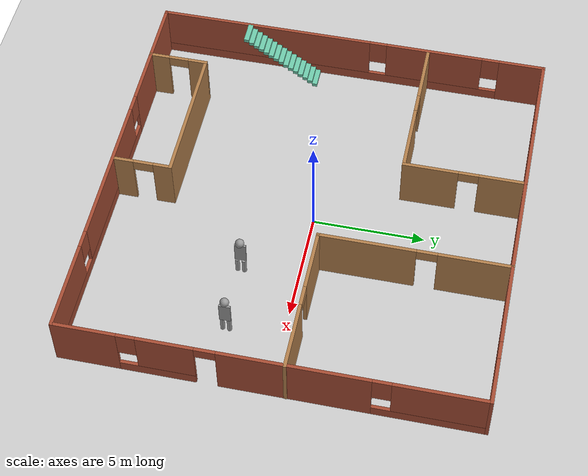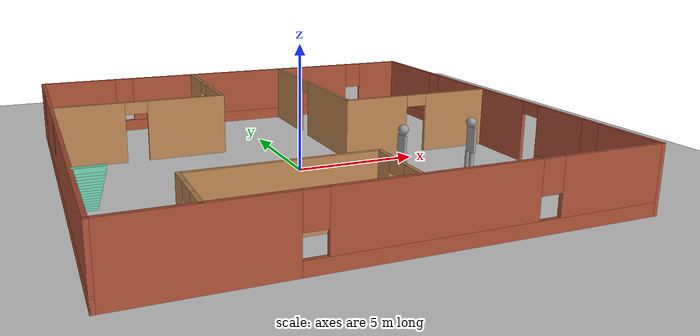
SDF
<sdf version="1.6">
 <world name="default">
  <light name="sun" type="directional">
   <pose>0 0 10 0 -0 0</pose>
   <diffuse>0.8 0.8 0.8 1</diffuse>
   <specular>0.2 0.2 0.2 1</specular>
   <attenuation>
    <range>1000</range>
    <constant>0.9</constant>
    <linear>0.01</linear>
    <quadratic>0.001</quadratic>
   </attenuation>
   <direction>-0.5 0.1 -0.9</direction>
  </light>
  <model name="ground_plane">
   <static>1</static>
   <link name="link">
    <collision name="collision">
     <geometry><plane><normal>0 0 1</normal><size>100 100</size></plane></geometry>
     <surface>
      <contact><collide_bitmask>65535</collide_bitmask></contact>
      <friction><ode><mu>100</mu><mu2>50</mu2></ode></friction>
     </surface>
    </collision>
    <visual name="visual">
     <cast_shadows>0</cast_shadows>
     <geometry><plane><normal>0 0 1</normal><size>100 100</size></plane></geometry>
     <material>
      <script><uri>file://media/materials/scripts/gazebo.material</uri><name>Gazebo/Grey</name></script>
     </material>
    </visual>
   </link>
  </model>
  <gravity>0 0 -9.8</gravity>
  <magnetic_field>6e-06 2.3e-05 -4.2e-05</magnetic_field>
  <atmosphere type="adiabatic"/>
  <physics name="default_physics" default="0" type="ode">
   <max_step_size>0.001</max_step_size>
   <real_time_factor>1</real_time_factor>
   <real_time_update_rate>1000</real_time_update_rate>
  </physics>
  <scene><ambient>0.4 0.4 0.4 1</ambient><background>0.7 0.7 0.7 1</background><shadows>1</shadows></scene>
  <spherical_coordinates>
   <surface_model>EARTH_WGS84</surface_model>
   <latitude_deg>0</latitude_deg>
   <longitude_deg>0</longitude_deg>
   <elevation>0</elevation>
   <heading_deg>0</heading_deg>
  </spherical_coordinates>
  <model name="RobotModel">
   <link name="link_0">
    <pose>0.01625 0 0.9625 0 -0 0</pose>
    <inertial>
     <mass>1</mass>
     <inertia><ixx>0.1</ixx><ixy>0</ixy><ixz>0</ixz><iyy>0.1</iyy><iyz>0</iyz><izz>0.1</izz></inertia>
    </inertial>
    <visual name="visual">
     <geometry><sphere><radius>0.2</radius></sphere></geometry>
     <material>
      <lighting>1</lighting>
      <script><uri>file://media/materials/scripts/gazebo.material</uri><name>Gazebo/Grey</name></script>
      <shader type="pixel"><normal_map>__default__</normal_map></shader>
      <ambient>0.3 0.3 0.3 1</ambient>
      <diffuse>0.7 0.7 0.7 1</diffuse>
      <specular>0.01 0.01 0.01 1</specular>
      <emissive>0 0 0 1</emissive>
     </material>
    </visual>
    <collision name="collision">
     <geometry><sphere><radius>0.2</radius></sphere></geometry>
     <surface>
      <friction>
       <ode><mu>1</mu><mu2>1</mu2><fdir1>0 0 0</fdir1><slip1>0</slip1><slip2>0</slip2></ode>
       <torsional>
        <coefficient>1</coefficient>
        <patch_radius>0</patch_radius>
        <surface_radius>0</surface_radius>
        <use_patch_radius>1</use_patch_radius>
        <ode><slip>0</slip></ode>
       </torsional>
      </friction>
      <bounce><restitution_coefficient>0</restitution_coefficient><threshold>1e+06</threshold></bounce>
      <contact>
       <collide_without_contact>0</collide_without_contact>
       <collide_without_contact_bitmask>1</collide_without_contact_bitmask>
       <collide_bitmask>1</collide_bitmask>
       <ode>
        <soft_cfm>0</soft_cfm>
        <soft_erp>0.2</soft_erp>
        <kp>1e+13</kp>
        <kd>1</kd>
        <max_vel>0.01</max_vel>
        <min_depth>0</min_depth>
       </ode>
       <bullet>
        <split_impulse>1</split_impulse>
        <split_impulse_penetration_threshold>-0.01</split_impulse_penetration_threshold>
        <soft_cfm>0</soft_cfm>
        <soft_erp>0.2</soft_erp>
        <kp>1e+13</kp>
        <kd>1</kd>
       </bullet>
      </contact>
     </surface>
    </collision>
   </link>
   <link name="link_1">
    <pose>-0.02875 -0 0.2625 0 -0 0</pose>
    <inertial>
     <mass>1</mass>
     <inertia>
      <ixx>0.166667</ixx>
      <ixy>0</ixy>
      <ixz>0</ixz>
      <iyy>0.166667</iyy>
      <iyz>0</iyz>
      <izz>0.166667</izz>
     </inertia>
    </inertial>
    <visual name="visual">
     <geometry><box><size>0.1 0.5 1</size></box></geometry>
     <material>
      <lighting>1</lighting>
      <script><uri>file://media/materials/scripts/gazebo.material</uri><name>Gazebo/Grey</name></script>
      <shader type="pixel"><normal_map>__default__</normal_map></shader>
      <ambient>0.3 0.3 0.3 1</ambient>
      <diffuse>0.7 0.7 0.7 1</diffuse>
      <specular>0.01 0.01 0.01 1</specular>
      <emissive>0 0 0 1</emissive>
     </material>
    </visual>
    <collision name="collision">
     <geometry><box><size>0.1 0.5 1</size></box></geometry>
     <surface>
      <friction>
       <ode><mu>1</mu><mu2>1</mu2><fdir1>0 0 0</fdir1><slip1>0</slip1><slip2>0</slip2></ode>
       <torsional>
        <coefficient>1</coefficient>
        <patch_radius>0</patch_radius>
        <surface_radius>0</surface_radius>
        <use_patch_radius>1</use_patch_radius>
        <ode><slip>0</slip></ode>
       </torsional>
      </friction>
      <bounce><restitution_coefficient>0</restitution_coefficient><threshold>1e+06</threshold></bounce>
      <contact>
       <collide_without_contact>0</collide_without_contact>
       <collide_without_contact_bitmask>1</collide_without_contact_bitmask>
       <collide_bitmask>1</collide_bitmask>
       <ode>
        <soft_cfm>0</soft_cfm>
        <soft_erp>0.2</soft_erp>
        <kp>1e+13</kp>
        <kd>1</kd>
        <max_vel>0.01</max_vel>
        <min_depth>0</min_depth>
       </ode>
       <bullet>
        <split_impulse>1</split_impulse>
        <split_impulse_penetration_threshold>-0.01</split_impulse_penetration_threshold>
        <soft_cfm>0</soft_cfm>
        <soft_erp>0.2</soft_erp>
        <kp>1e+13</kp>
        <kd>1</kd>
       </bullet>
      </contact>
     </surface>
    </collision>
   </link>
   <link name="link_2">
    <pose>-0.00375 -0.15 -0.6125 0 -0 0</pose>
    <inertial>
     <mass>1</mass>
     <inertia><ixx>0.145833</ixx><ixy>0</ixy><ixz>0</ixz><iyy>0.145833</iyy><iyz>0</iyz><izz>0.125</izz></inertia>
    </inertial>
    <visual name="visual">
     <geometry><cylinder><radius>0.1</radius><length>0.75</length></cylinder></geometry>
     <material>
      <lighting>1</lighting>
      <script><uri>file://media/materials/scripts/gazebo.material</uri><name>Gazebo/Grey</name></script>
      <shader type="pixel"><normal_map>__default__</normal_map></shader>
      <ambient>0.3 0.3 0.3 1</ambient>
      <diffuse>0.7 0.7 0.7 1</diffuse>
      <specular>0.01 0.01 0.01 1</specular>
      <emissive>0 0 0 1</emissive>
     </material>
    </visual>
    <collision name="collision">
     <geometry><cylinder><radius>0.1</radius><length>0.75</length></cylinder></geometry>
     <surface>
      <friction>
       <ode><mu>1</mu><mu2>1</mu2><fdir1>0 0 0</fdir1><slip1>0</slip1><slip2>0</slip2></ode>
       <torsional>
        <coefficient>1</coefficient>
        <patch_radius>0</patch_radius>
        <surface_radius>0</surface_radius>
        <use_patch_radius>1</use_patch_radius>
        <ode><slip>0</slip></ode>
       </torsional>
      </friction>
      <bounce><restitution_coefficient>0</restitution_coefficient><threshold>1e+06</threshold></bounce>
      <contact>
       <collide_without_contact>0</collide_without_contact>
       <collide_without_contact_bitmask>1</collide_without_contact_bitmask>
       <collide_bitmask>1</collide_bitmask>
       <ode>
        <soft_cfm>0</soft_cfm>
        <soft_erp>0.2</soft_erp>
        <kp>1e+13</kp>
        <kd>1</kd>
        <max_vel>0.01</max_vel>
        <min_depth>0</min_depth>
       </ode>
       <bullet>
        <split_impulse>1</split_impulse>
        <split_impulse_penetration_threshold>-0.01</split_impulse_penetration_threshold>
        <soft_cfm>0</soft_cfm>
        <soft_erp>0.2</soft_erp>
        <kp>1e+13</kp>
        <kd>1</kd>
       </bullet>
      </contact>
     </surface>
    </collision>
   </link>
   <link name="link_2_clone">
    <pose>0.01625 0.15 -0.6125 0 -0 0</pose>
    <inertial>
     <mass>1</mass>
     <inertia><ixx>0.145833</ixx><ixy>0</ixy><ixz>0</ixz><iyy>0.145833</iyy><iyz>0</iyz><izz>0.125</izz></inertia>
    </inertial>
    <visual name="visual">
     <geometry><cylinder><radius>0.1</radius><length>0.75</length></cylinder></geometry>
     <material>
      <lighting>1</lighting>
      <script><uri>file://media/materials/scripts/gazebo.material</uri><name>Gazebo/Grey</name></script>
      <shader type="pixel"><normal_map>__default__</normal_map></shader>
      <ambient>0.3 0.3 0.3 1</ambient>
      <diffuse>0.7 0.7 0.7 1</diffuse>
      <specular>0.01 0.01 0.01 1</specular>
      <emissive>0 0 0 1</emissive>
     </material>
    </visual>
    <collision name="collision">
     <geometry><cylinder><radius>0.1</radius><length>0.75</length></cylinder></geometry>
     <surface>
      <friction>
       <ode><mu>1</mu><mu2>1</mu2><fdir1>0 0 0</fdir1><slip1>0</slip1><slip2>0</slip2></ode>
       <torsional>
        <coefficient>1</coefficient>
        <patch_radius>0</patch_radius>
        <surface_radius>0</surface_radius>
        <use_patch_radius>1</use_patch_radius>
        <ode><slip>0</slip></ode>
       </torsional>
      </friction>
      <bounce><restitution_coefficient>0</restitution_coefficient><threshold>1e+06</threshold></bounce>
      <contact>
       <collide_without_contact>0</collide_without_contact>
       <collide_without_contact_bitmask>1</collide_without_contact_bitmask>
       <collide_bitmask>1</collide_bitmask>
       <ode>
        <soft_cfm>0</soft_cfm>
        <soft_erp>0.2</soft_erp>
        <kp>1e+13</kp>
        <kd>1</kd>
        <max_vel>0.01</max_vel>
        <min_depth>0</min_depth>
       </ode>
       <bullet>
        <split_impulse>1</split_impulse>
        <split_impulse_penetration_threshold>-0.01</split_impulse_penetration_threshold>
        <soft_cfm>0</soft_cfm>
        <soft_erp>0.2</soft_erp>
        <kp>1e+13</kp>
        <kd>1</kd>
       </bullet>
      </contact>
     </surface>
    </collision>
   </link>
   <joint name="link_0_JOINT_0" type="fixed">
    <parent>link_0</parent>
    <child>link_1</child>
    <physics>
     <ode><limit><cfm>0</cfm><erp>0.2</erp></limit><suspension><cfm>0</cfm><erp>0.2</erp></suspension></ode>
    </physics>
   </joint>
   <joint name="link_1_JOINT_1" type="fixed">
    <parent>link_1</parent>
    <child>link_2</child>
    <physics>
     <ode><limit><cfm>0</cfm><erp>0.2</erp></limit><suspension><cfm>0</cfm><erp>0.2</erp></suspension></ode>
    </physics>
   </joint>
   <joint name="link_1_JOINT_2" type="fixed">
    <parent>link_1</parent>
    <child>link_2_clone</child>
    <physics>
     <ode><limit><cfm>0</cfm><erp>0.2</erp></limit><suspension><cfm>0</cfm><erp>0.2</erp></suspension></ode>
    </physics>
   </joint>
   <static>0</static>
   <pose>3.16101 -2.55164 0.987495 -1e-06 -1e-06 0.050256</pose>
  </model>
  <model name="RobotModel_clone">
   <link name="link_0">
    <pose>0.01625 0 0.9625 0 -0 0</pose>
    <inertial>
     <mass>1</mass>
     <inertia><ixx>0.1</ixx><ixy>0</ixy><ixz>0</ixz><iyy>0.1</iyy><iyz>0</iyz><izz>0.1</izz></inertia>
    </inertial>
    <visual name="visual">
     <geometry><sphere><radius>0.2</radius></sphere></geometry>
     <material>
      <lighting>1</lighting>
      <script><uri>file://media/materials/scripts/gazebo.material</uri><name>Gazebo/Grey</name></script>
      <shader type="pixel"><normal_map>__default__</normal_map></shader>
      <ambient>0.3 0.3 0.3 1</ambient>
      <diffuse>0.7 0.7 0.7 1</diffuse>
      <specular>0.01 0.01 0.01 1</specular>
      <emissive>0 0 0 1</emissive>
     </material>
    </visual>
    <collision name="collision">
     <geometry><sphere><radius>0.2</radius></sphere></geometry>
     <surface>
      <friction>
       <ode><mu>1</mu><mu2>1</mu2><fdir1>0 0 0</fdir1><slip1>0</slip1><slip2>0</slip2></ode>
       <torsional>
        <coefficient>1</coefficient>
        <patch_radius>0</patch_radius>
        <surface_radius>0</surface_radius>
        <use_patch_radius>1</use_patch_radius>
        <ode><slip>0</slip></ode>
       </torsional>
      </friction>
      <bounce><restitution_coefficient>0</restitution_coefficient><threshold>1e+06</threshold></bounce>
      <contact>
       <collide_without_contact>0</collide_without_contact>
       <collide_without_contact_bitmask>1</collide_without_contact_bitmask>
       <collide_bitmask>1</collide_bitmask>
       <ode>
        <soft_cfm>0</soft_cfm>
        <soft_erp>0.2</soft_erp>
        <kp>1e+13</kp>
        <kd>1</kd>
        <max_vel>0.01</max_vel>
        <min_depth>0</min_depth>
       </ode>
       <bullet>
        <split_impulse>1</split_impulse>
        <split_impulse_penetration_threshold>-0.01</split_impulse_penetration_threshold>
        <soft_cfm>0</soft_cfm>
        <soft_erp>0.2</soft_erp>
        <kp>1e+13</kp>
        <kd>1</kd>
       </bullet>
      </contact>
     </surface>
    </collision>
   </link>
   <link name="link_1">
    <pose>-0.02875 -0 0.2625 0 -0 0</pose>
    <inertial>
     <mass>1</mass>
     <inertia>
      <ixx>0.166667</ixx>
      <ixy>0</ixy>
      <ixz>0</ixz>
      <iyy>0.166667</iyy>
      <iyz>0</iyz>
      <izz>0.166667</izz>
     </inertia>
    </inertial>
    <visual name="visual">
     <geometry><box><size>0.1 0.5 1</size></box></geometry>
     <material>
      <lighting>1</lighting>
      <script><uri>file://media/materials/scripts/gazebo.material</uri><name>Gazebo/Grey</name></script>
      <shader type="pixel"><normal_map>__default__</normal_map></shader>
      <ambient>0.3 0.3 0.3 1</ambient>
      <diffuse>0.7 0.7 0.7 1</diffuse>
      <specular>0.01 0.01 0.01 1</specular>
      <emissive>0 0 0 1</emissive>
     </material>
    </visual>
    <collision name="collision">
     <geometry><box><size>0.1 0.5 1</size></box></geometry>
     <surface>
      <friction>
       <ode><mu>1</mu><mu2>1</mu2><fdir1>0 0 0</fdir1><slip1>0</slip1><slip2>0</slip2></ode>
       <torsional>
        <coefficient>1</coefficient>
        <patch_radius>0</patch_radius>
        <surface_radius>0</surface_radius>
        <use_patch_radius>1</use_patch_radius>
        <ode><slip>0</slip></ode>
       </torsional>
      </friction>
      <bounce><restitution_coefficient>0</restitution_coefficient><threshold>1e+06</threshold></bounce>
      <contact>
       <collide_without_contact>0</collide_without_contact>
       <collide_without_contact_bitmask>1</collide_without_contact_bitmask>
       <collide_bitmask>1</collide_bitmask>
       <ode>
        <soft_cfm>0</soft_cfm>
        <soft_erp>0.2</soft_erp>
        <kp>1e+13</kp>
        <kd>1</kd>
        <max_vel>0.01</max_vel>
        <min_depth>0</min_depth>
       </ode>
       <bullet>
        <split_impulse>1</split_impulse>
        <split_impulse_penetration_threshold>-0.01</split_impulse_penetration_threshold>
        <soft_cfm>0</soft_cfm>
        <soft_erp>0.2</soft_erp>
        <kp>1e+13</kp>
        <kd>1</kd>
       </bullet>
      </contact>
     </surface>
    </collision>
   </link>
   <link name="link_2">
    <pose>-0.00375 -0.15 -0.6125 0 -0 0</pose>
    <inertial>
     <mass>1</mass>
     <inertia><ixx>0.145833</ixx><ixy>0</ixy><ixz>0</ixz><iyy>0.145833</iyy><iyz>0</iyz><izz>0.125</izz></inertia>
    </inertial>
    <visual name="visual">
     <geometry><cylinder><radius>0.1</radius><length>0.75</length></cylinder></geometry>
     <material>
      <lighting>1</lighting>
      <script><uri>file://media/materials/scripts/gazebo.material</uri><name>Gazebo/Grey</name></script>
      <shader type="pixel"><normal_map>__default__</normal_map></shader>
      <ambient>0.3 0.3 0.3 1</ambient>
      <diffuse>0.7 0.7 0.7 1</diffuse>
      <specular>0.01 0.01 0.01 1</specular>
      <emissive>0 0 0 1</emissive>
     </material>
    </visual>
    <collision name="collision">
     <geometry><cylinder><radius>0.1</radius><length>0.75</length></cylinder></geometry>
     <surface>
      <friction>
       <ode><mu>1</mu><mu2>1</mu2><fdir1>0 0 0</fdir1><slip1>0</slip1><slip2>0</slip2></ode>
       <torsional>
        <coefficient>1</coefficient>
        <patch_radius>0</patch_radius>
        <surface_radius>0</surface_radius>
        <use_patch_radius>1</use_patch_radius>
        <ode><slip>0</slip></ode>
       </torsional>
      </friction>
      <bounce><restitution_coefficient>0</restitution_coefficient><threshold>1e+06</threshold></bounce>
      <contact>
       <collide_without_contact>0</collide_without_contact>
       <collide_without_contact_bitmask>1</collide_without_contact_bitmask>
       <collide_bitmask>1</collide_bitmask>
       <ode>
        <soft_cfm>0</soft_cfm>
        <soft_erp>0.2</soft_erp>
        <kp>1e+13</kp>
        <kd>1</kd>
        <max_vel>0.01</max_vel>
        <min_depth>0</min_depth>
       </ode>
       <bullet>
        <split_impulse>1</split_impulse>
        <split_impulse_penetration_threshold>-0.01</split_impulse_penetration_threshold>
        <soft_cfm>0</soft_cfm>
        <soft_erp>0.2</soft_erp>
        <kp>1e+13</kp>
        <kd>1</kd>
       </bullet>
      </contact>
     </surface>
    </collision>
   </link>
   <link name="link_2_clone">
    <pose>0.01625 0.15 -0.6125 0 -0 0</pose>
    <inertial>
     <mass>1</mass>
     <inertia><ixx>0.145833</ixx><ixy>0</ixy><ixz>0</ixz><iyy>0.145833</iyy><iyz>0</iyz><izz>0.125</izz></inertia>
    </inertial>
    <visual name="visual">
     <geometry><cylinder><radius>0.1</radius><length>0.75</length></cylinder></geometry>
     <material>
      <lighting>1</lighting>
      <script><uri>file://media/materials/scripts/gazebo.material</uri><name>Gazebo/Grey</name></script>
      <shader type="pixel"><normal_map>__default__</normal_map></shader>
      <ambient>0.3 0.3 0.3 1</ambient>
      <diffuse>0.7 0.7 0.7 1</diffuse>
      <specular>0.01 0.01 0.01 1</specular>
      <emissive>0 0 0 1</emissive>
     </material>
    </visual>
    <collision name="collision">
     <geometry><cylinder><radius>0.1</radius><length>0.75</length></cylinder></geometry>
     <surface>
      <friction>
       <ode><mu>1</mu><mu2>1</mu2><fdir1>0 0 0</fdir1><slip1>0</slip1><slip2>0</slip2></ode>
       <torsional>
        <coefficient>1</coefficient>
        <patch_radius>0</patch_radius>
        <surface_radius>0</surface_radius>
        <use_patch_radius>1</use_patch_radius>
        <ode><slip>0</slip></ode>
       </torsional>
      </friction>
      <bounce><restitution_coefficient>0</restitution_coefficient><threshold>1e+06</threshold></bounce>
      <contact>
       <collide_without_contact>0</collide_without_contact>
       <collide_without_contact_bitmask>1</collide_without_contact_bitmask>
       <collide_bitmask>1</collide_bitmask>
       <ode>
        <soft_cfm>0</soft_cfm>
        <soft_erp>0.2</soft_erp>
        <kp>1e+13</kp>
        <kd>1</kd>
        <max_vel>0.01</max_vel>
        <min_depth>0</min_depth>
       </ode>
       <bullet>
        <split_impulse>1</split_impulse>
        <split_impulse_penetration_threshold>-0.01</split_impulse_penetration_threshold>
        <soft_cfm>0</soft_cfm>
        <soft_erp>0.2</soft_erp>
        <kp>1e+13</kp>
        <kd>1</kd>
       </bullet>
      </contact>
     </surface>
    </collision>
   </link>
   <joint name="link_0_JOINT_0" type="fixed">
    <parent>link_0</parent>
    <child>link_1</child>
    <physics>
     <ode><limit><cfm>0</cfm><erp>0.2</erp></limit><suspension><cfm>0</cfm><erp>0.2</erp></suspension></ode>
    </physics>
   </joint>
   <joint name="link_1_JOINT_1" type="fixed">
    <parent>link_1</parent>
    <child>link_2</child>
    <physics>
     <ode><limit><cfm>0</cfm><erp>0.2</erp></limit><suspension><cfm>0</cfm><erp>0.2</erp></suspension></ode>
    </physics>
   </joint>
   <joint name="link_1_JOINT_2" type="fixed">
    <parent>link_1</parent>
    <child>link_2_clone</child>
    <physics>
     <ode><limit><cfm>0</cfm><erp>0.2</erp></limit><suspension><cfm>0</cfm><erp>0.2</erp></suspension></ode>
    </physics>
   </joint>
   <static>0</static>
   <pose>6.2563 -2.47189 0.9875 1e-06 -2e-06 -3.12426</pose>
  </model>
  <model name="Building_1">
   <pose>0.010104 0 0 0 -0 0</pose>
   <link name="Stairs_1">
    <visual name="Stairs_1_Visual_0">
     <pose>-8.49445 -1.5935 0.083333 0 -0 0</pose>
     <geometry><box><size>1 0.233333 0.166667</size></box></geometry>
     <material>
      <script><uri>file://media/materials/scripts/gazebo.material</uri><name>Gazebo/Grey</name></script>
      <ambient>0.435294 0.796078 0.67451 1</ambient>
     </material>
     <meta><layer>0</layer></meta>
    </visual>
    <collision name="Stairs_1_Collision_0">
     <geometry><box><size>1 0.233333 0.166667</size></box></geometry>
     <pose>-8.49445 -1.5935 0.083333 0 -0 0</pose>
    </collision>
    <visual name="Stairs_1_Visual_1">
     <pose>-8.49445 -1.82683 0.25 0 -0 0</pose>
     <geometry><box><size>1 0.233333 0.166667</size></box></geometry>
     <material>
      <script><uri>file://media/materials/scripts/gazebo.material</uri><name>Gazebo/Grey</name></script>
      <ambient>0.435294 0.796078 0.67451 1</ambient>
     </material>
     <meta><layer>0</layer></meta>
    </visual>
    <collision name="Stairs_1_Collision_1">
     <geometry><box><size>1 0.233333 0.166667</size></box></geometry>
     <pose>-8.49445 -1.82683 0.25 0 -0 0</pose>
    </collision>
    <visual name="Stairs_1_Visual_2">
     <pose>-8.49445 -2.06016 0.416667 0 -0 0</pose>
     <geometry><box><size>1 0.233333 0.166667</size></box></geometry>
     <material>
      <script><uri>file://media/materials/scripts/gazebo.material</uri><name>Gazebo/Grey</name></script>
      <ambient>0.435294 0.796078 0.67451 1</ambient>
     </material>
     <meta><layer>0</layer></meta>
    </visual>
    <collision name="Stairs_1_Collision_2">
     <geometry><box><size>1 0.233333 0.166667</size></box></geometry>
     <pose>-8.49445 -2.06016 0.416667 0 -0 0</pose>
    </collision>
    <visual name="Stairs_1_Visual_3">
     <pose>-8.49445 -2.2935 0.583333 0 -0 0</pose>
     <geometry><box><size>1 0.233333 0.166667</size></box></geometry>
     <material>
      <script><uri>file://media/materials/scripts/gazebo.material</uri><name>Gazebo/Grey</name></script>
      <ambient>0.435294 0.796078 0.67451 1</ambient>
     </material>
     <meta><layer>0</layer></meta>
    </visual>
    <collision name="Stairs_1_Collision_3">
     <geometry><box><size>1 0.233333 0.166667</size></box></geometry>
     <pose>-8.49445 -2.2935 0.583333 0 -0 0</pose>
    </collision>
    <visual name="Stairs_1_Visual_4">
     <pose>-8.49445 -2.52683 0.75 0 -0 0</pose>
     <geometry><box><size>1 0.233333 0.166667</size></box></geometry>
     <material>
      <script><uri>file://media/materials/scripts/gazebo.material</uri><name>Gazebo/Grey</name></script>
      <ambient>0.435294 0.796078 0.67451 1</ambient>
     </material>
     <meta><layer>0</layer></meta>
    </visual>
    <collision name="Stairs_1_Collision_4">
     <geometry><box><size>1 0.233333 0.166667</size></box></geometry>
     <pose>-8.49445 -2.52683 0.75 0 -0 0</pose>
    </collision>
    <visual name="Stairs_1_Visual_5">
     <pose>-8.49445 -2.76016 0.916667 0 -0 0</pose>
     <geometry><box><size>1 0.233333 0.166667</size></box></geometry>
     <material>
      <script><uri>file://media/materials/scripts/gazebo.material</uri><name>Gazebo/Grey</name></script>
      <ambient>0.435294 0.796078 0.67451 1</ambient>
     </material>
     <meta><layer>0</layer></meta>
    </visual>
    <collision name="Stairs_1_Collision_5">
     <geometry><box><size>1 0.233333 0.166667</size></box></geometry>
     <pose>-8.49445 -2.76016 0.916667 0 -0 0</pose>
    </collision>
    <visual name="Stairs_1_Visual_6">
     <pose>-8.49445 -2.9935 1.08333 0 -0 0</pose>
     <geometry><box><size>1 0.233333 0.166667</size></box></geometry>
     <material>
      <script><uri>file://media/materials/scripts/gazebo.material</uri><name>Gazebo/Grey</name></script>
      <ambient>0.435294 0.796078 0.67451 1</ambient>
     </material>
     <meta><layer>0</layer></meta>
    </visual>
    <collision name="Stairs_1_Collision_6">
     <geometry><box><size>1 0.233333 0.166667</size></box></geometry>
     <pose>-8.49445 -2.9935 1.08333 0 -0 0</pose>
    </collision>
    <visual name="Stairs_1_Visual_7">
     <pose>-8.49445 -3.22683 1.25 0 -0 0</pose>
     <geometry><box><size>1 0.233333 0.166667</size></box></geometry>
     <material>
      <script><uri>file://media/materials/scripts/gazebo.material</uri><name>Gazebo/Grey</name></script>
      <ambient>0.435294 0.796078 0.67451 1</ambient>
     </material>
     <meta><layer>0</layer></meta>
    </visual>
    <collision name="Stairs_1_Collision_7">
     <geometry><box><size>1 0.233333 0.166667</size></box></geometry>
     <pose>-8.49445 -3.22683 1.25 0 -0 0</pose>
    </collision>
    <visual name="Stairs_1_Visual_8">
     <pose>-8.49445 -3.46016 1.41667 0 -0 0</pose>
     <geometry><box><size>1 0.233333 0.166667</size></box></geometry>
     <material>
      <script><uri>file://media/materials/scripts/gazebo.material</uri><name>Gazebo/Grey</name></script>
      <ambient>0.435294 0.796078 0.67451 1</ambient>
     </material>
     <meta><layer>0</layer></meta>
    </visual>
    <collision name="Stairs_1_Collision_8">
     <geometry><box><size>1 0.233333 0.166667</size></box></geometry>
     <pose>-8.49445 -3.46016 1.41667 0 -0 0</pose>
    </collision>
    <visual name="Stairs_1_Visual_9">
     <pose>-8.49445 -3.6935 1.58333 0 -0 0</pose>
     <geometry><box><size>1 0.233333 0.166667</size></box></geometry>
     <material>
      <script><uri>file://media/materials/scripts/gazebo.material</uri><name>Gazebo/Grey</name></script>
      <ambient>0.435294 0.796078 0.67451 1</ambient>
     </material>
     <meta><layer>0</layer></meta>
    </visual>
    <collision name="Stairs_1_Collision_9">
     <geometry><box><size>1 0.233333 0.166667</size></box></geometry>
     <pose>-8.49445 -3.6935 1.58333 0 -0 0</pose>
    </collision>
    <visual name="Stairs_1_Visual_10">
     <pose>-8.49445 -3.92683 1.75 0 -0 0</pose>
     <geometry><box><size>1 0.233333 0.166667</size></box></geometry>
     <material>
      <script><uri>file://media/materials/scripts/gazebo.material</uri><name>Gazebo/Grey</name></script>
      <ambient>0.435294 0.796078 0.67451 1</ambient>
     </material>
     <meta><layer>0</layer></meta>
    </visual>
    <collision name="Stairs_1_Collision_10">
     <geometry><box><size>1 0.233333 0.166667</size></box></geometry>
     <pose>-8.49445 -3.92683 1.75 0 -0 0</pose>
    </collision>
    <visual name="Stairs_1_Visual_11">
     <pose>-8.49445 -4.16016 1.91667 0 -0 0</pose>
     <geometry><box><size>1 0.233333 0.166667</size></box></geometry>
     <material>
      <script><uri>file://media/materials/scripts/gazebo.material</uri><name>Gazebo/Grey</name></script>
      <ambient>0.435294 0.796078 0.67451 1</ambient>
     </material>
     <meta><layer>0</layer></meta>
    </visual>
    <collision name="Stairs_1_Collision_11">
     <geometry><box><size>1 0.233333 0.166667</size></box></geometry>
     <pose>-8.49445 -4.16016 1.91667 0 -0 0</pose>
    </collision>
    <visual name="Stairs_1_Visual_12">
     <pose>-8.49445 -4.3935 2.08333 0 -0 0</pose>
     <geometry><box><size>1 0.233333 0.166667</size></box></geometry>
     <material>
      <script><uri>file://media/materials/scripts/gazebo.material</uri><name>Gazebo/Grey</name></script>
      <ambient>0.435294 0.796078 0.67451 1</ambient>
     </material>
     <meta><layer>0</layer></meta>
    </visual>
    <collision name="Stairs_1_Collision_12">
     <geometry><box><size>1 0.233333 0.166667</size></box></geometry>
     <pose>-8.49445 -4.3935 2.08333 0 -0 0</pose>
    </collision>
    <visual name="Stairs_1_Visual_13">
     <pose>-8.49445 -4.62683 2.25 0 -0 0</pose>
     <geometry><box><size>1 0.233333 0.166667</size></box></geometry>
     <material>
      <script><uri>file://media/materials/scripts/gazebo.material</uri><name>Gazebo/Grey</name></script>
      <ambient>0.435294 0.796078 0.67451 1</ambient>
     </material>
     <meta><layer>0</layer></meta>
    </visual>
    <collision name="Stairs_1_Collision_13">
     <geometry><box><size>1 0.233333 0.166667</size></box></geometry>
     <pose>-8.49445 -4.62683 2.25 0 -0 0</pose>
    </collision>
    <visual name="Stairs_1_Visual_14">
     <pose>-8.49445 -4.86016 2.41667 0 -0 0</pose>
     <geometry><box><size>1 0.233333 0.166667</size></box></geometry>
     <material>
      <script><uri>file://media/materials/scripts/gazebo.material</uri><name>Gazebo/Grey</name></script>
      <ambient>0.435294 0.796078 0.67451 1</ambient>
     </material>
     <meta><layer>0</layer></meta>
    </visual>
    <collision name="Stairs_1_Collision_14">
     <geometry><box><size>1 0.233333 0.166667</size></box></geometry>
     <pose>-8.49445 -4.86016 2.41667 0 -0 0</pose>
    </collision>
   </link>
   <link name="Wall_21">
    <pose>-0.010104 -9 0 0 -0 0</pose>
    <visual name="Wall_21_Visual_0">
     <pose>-6.30101 0 1.25 0 -0 0</pose>
     <geometry><box><size>5.54799 0.15 2.5</size></box></geometry>
     <material>
      <script><uri>file://media/materials/scripts/gazebo.material</uri><name>Gazebo/Bricks</name></script>
      <ambient>1 1 1 1</ambient>
     </material>
     <meta><layer>0</layer></meta>
    </visual>
    <collision name="Wall_21_Collision_0">
     <geometry><box><size>5.54799 0.15 2.5</size></box></geometry>
     <pose>-6.30101 0 1.25 0 -0 0</pose>
    </collision>
    <visual name="Wall_21_Visual_1">
     <pose>2.77399 0 0.25 0 -0 0</pose>
     <geometry><box><size>12.602 0.15 0.5</size></box></geometry>
     <material>
      <script><uri>file://media/materials/scripts/gazebo.material</uri><name>Gazebo/Bricks</name></script>
      <ambient>1 1 1 1</ambient>
     </material>
     <meta><layer>0</layer></meta>
    </visual>
    <collision name="Wall_21_Collision_1">
     <geometry><box><size>12.602 0.15 0.5</size></box></geometry>
     <pose>2.77399 0 0.25 0 -0 0</pose>
    </collision>
    <visual name="Wall_21_Visual_2">
     <pose>0.768638 0 1.5 0 -0 0</pose>
     <geometry><box><size>6.9913 0.15 2</size></box></geometry>
     <material>
      <script><uri>file://media/materials/scripts/gazebo.material</uri><name>Gazebo/Bricks</name></script>
      <ambient>1 1 1 1</ambient>
     </material>
     <meta><layer>0</layer></meta>
    </visual>
    <collision name="Wall_21_Collision_2">
     <geometry><box><size>6.9913 0.15 2</size></box></geometry>
     <pose>0.768638 0 1.5 0 -0 0</pose>
    </collision>
    <visual name="Wall_21_Visual_3">
     <pose>7.06965 0 1.5 0 -0 0</pose>
     <geometry><box><size>4.01071 0.15 2</size></box></geometry>
     <material>
      <script><uri>file://media/materials/scripts/gazebo.material</uri><name>Gazebo/Bricks</name></script>
      <ambient>1 1 1 1</ambient>
     </material>
     <meta><layer>0</layer></meta>
    </visual>
    <collision name="Wall_21_Collision_3">
     <geometry><box><size>4.01071 0.15 2</size></box></geometry>
     <pose>7.06965 0 1.5 0 -0 0</pose>
    </collision>
    <visual name="Wall_21_Visual_4">
     <pose>-3.12701 0 1.9 0 -0 0</pose>
     <geometry><box><size>0.8 0.15 1.2</size></box></geometry>
     <material>
      <script><uri>file://media/materials/scripts/gazebo.material</uri><name>Gazebo/Bricks</name></script>
      <ambient>1 1 1 1</ambient>
     </material>
     <meta><layer>0</layer></meta>
    </visual>
    <collision name="Wall_21_Collision_4">
     <geometry><box><size>0.8 0.15 1.2</size></box></geometry>
     <pose>-3.12701 0 1.9 0 -0 0</pose>
    </collision>
    <visual name="Wall_21_Visual_5">
     <pose>4.66429 0 1.9 0 -0 0</pose>
     <geometry><box><size>0.8 0.15 1.2</size></box></geometry>
     <material>
      <script><uri>file://media/materials/scripts/gazebo.material</uri><name>Gazebo/Bricks</name></script>
      <ambient>1 1 1 1</ambient>
     </material>
     <meta><layer>0</layer></meta>
    </visual>
    <collision name="Wall_21_Collision_5">
     <geometry><box><size>0.8 0.15 1.2</size></box></geometry>
     <pose>4.66429 0 1.9 0 -0 0</pose>
    </collision>
   </link>
   <link name="Wall_22">
    <pose>8.9899 0 0 0 -0 1.5708</pose>
    <visual name="Wall_22_Visual_0">
     <pose>-7.68285 0 1.25 0 -0 0</pose>
     <geometry><box><size>2.78431 0.15 2.5</size></box></geometry>
     <material>
      <script><uri>file://media/materials/scripts/gazebo.material</uri><name>Gazebo/Bricks</name></script>
      <ambient>1 1 1 1</ambient>
     </material>
     <meta><layer>0</layer></meta>
    </visual>
    <collision name="Wall_22_Collision_0">
     <geometry><box><size>2.78431 0.15 2.5</size></box></geometry>
     <pose>-7.68285 0 1.25 0 -0 0</pose>
    </collision>
    <visual name="Wall_22_Visual_1">
     <pose>1.04445 0 1.25 0 -0 0</pose>
     <geometry><box><size>6.38478 0.15 2.5</size></box></geometry>
     <material>
      <script><uri>file://media/materials/scripts/gazebo.material</uri><name>Gazebo/Bricks</name></script>
      <ambient>1 1 1 1</ambient>
     </material>
     <meta><layer>0</layer></meta>
    </visual>
    <collision name="Wall_22_Collision_1">
     <geometry><box><size>6.38478 0.15 2.5</size></box></geometry>
     <pose>1.04445 0 1.25 0 -0 0</pose>
    </collision>
    <visual name="Wall_22_Visual_2">
     <pose>-4.66932 0 0.25 0 -0 0</pose>
     <geometry><box><size>3.24275 0.15 0.5</size></box></geometry>
     <material>
      <script><uri>file://media/materials/scripts/gazebo.material</uri><name>Gazebo/Bricks</name></script>
      <ambient>1 1 1 1</ambient>
     </material>
     <meta><layer>0</layer></meta>
    </visual>
    <collision name="Wall_22_Collision_2">
     <geometry><box><size>3.24275 0.15 0.5</size></box></geometry>
     <pose>-4.66932 0 0.25 0 -0 0</pose>
    </collision>
    <visual name="Wall_22_Visual_3">
     <pose>6.65592 0 0.25 0 -0 0</pose>
     <geometry><box><size>4.83816 0.15 0.5</size></box></geometry>
     <material>
      <script><uri>file://media/materials/scripts/gazebo.material</uri><name>Gazebo/Bricks</name></script>
      <ambient>1 1 1 1</ambient>
     </material>
     <meta><layer>0</layer></meta>
    </visual>
    <collision name="Wall_22_Collision_3">
     <geometry><box><size>4.83816 0.15 0.5</size></box></geometry>
     <pose>6.65592 0 0.25 0 -0 0</pose>
    </collision>
    <visual name="Wall_22_Visual_4">
     <pose>-4.26931 0 1.5 0 -0 0</pose>
     <geometry><box><size>2.44275 0.15 2</size></box></geometry>
     <material>
      <script><uri>file://media/materials/scripts/gazebo.material</uri><name>Gazebo/Bricks</name></script>
      <ambient>1 1 1 1</ambient>
     </material>
     <meta><layer>0</layer></meta>
    </visual>
    <collision name="Wall_22_Collision_4">
     <geometry><box><size>2.44275 0.15 2</size></box></geometry>
     <pose>-4.26931 0 1.5 0 -0 0</pose>
    </collision>
    <visual name="Wall_22_Visual_5">
     <pose>-4.26931 0 1.5 0 -0 0</pose>
     <geometry><box><size>2.44275 0.15 2</size></box></geometry>
     <material>
      <script><uri>file://media/materials/scripts/gazebo.material</uri><name>Gazebo/Bricks</name></script>
      <ambient>1 1 1 1</ambient>
     </material>
     <meta><layer>0</layer></meta>
    </visual>
    <collision name="Wall_22_Collision_5">
     <geometry><box><size>2.44275 0.15 2</size></box></geometry>
     <pose>-4.26931 0 1.5 0 -0 0</pose>
    </collision>
    <visual name="Wall_22_Visual_6">
     <pose>7.05592 0 1.5 0 -0 0</pose>
     <geometry><box><size>4.03816 0.15 2</size></box></geometry>
     <material>
      <script><uri>file://media/materials/scripts/gazebo.material</uri><name>Gazebo/Bricks</name></script>
      <ambient>1 1 1 1</ambient>
     </material>
     <meta><layer>0</layer></meta>
    </visual>
    <collision name="Wall_22_Collision_6">
     <geometry><box><size>4.03816 0.15 2</size></box></geometry>
     <pose>7.05592 0 1.5 0 -0 0</pose>
    </collision>
    <visual name="Wall_22_Visual_7">
     <pose>-5.89069 0 1.9 0 -0 0</pose>
     <geometry><box><size>0.8 0.15 1.2</size></box></geometry>
     <material>
      <script><uri>file://media/materials/scripts/gazebo.material</uri><name>Gazebo/Bricks</name></script>
      <ambient>1 1 1 1</ambient>
     </material>
     <meta><layer>0</layer></meta>
    </visual>
    <collision name="Wall_22_Collision_7">
     <geometry><box><size>0.8 0.15 1.2</size></box></geometry>
     <pose>-5.89069 0 1.9 0 -0 0</pose>
    </collision>
    <visual name="Wall_22_Visual_8">
     <pose>4.63684 0 1.9 0 -0 0</pose>
     <geometry><box><size>0.8 0.15 1.2</size></box></geometry>
     <material>
      <script><uri>file://media/materials/scripts/gazebo.material</uri><name>Gazebo/Bricks</name></script>
      <ambient>1 1 1 1</ambient>
     </material>
     <meta><layer>0</layer></meta>
    </visual>
    <collision name="Wall_22_Collision_8">
     <geometry><box><size>0.8 0.15 1.2</size></box></geometry>
     <pose>4.63684 0 1.9 0 -0 0</pose>
    </collision>
    <visual name="Wall_22_Visual_9">
     <pose>-2.59794 0 2.25 0 -0 0</pose>
     <geometry><box><size>0.9 0.15 0.5</size></box></geometry>
     <material>
      <script><uri>file://media/materials/scripts/gazebo.material</uri><name>Gazebo/Bricks</name></script>
      <ambient>1 1 1 1</ambient>
     </material>
     <meta><layer>0</layer></meta>
    </visual>
    <collision name="Wall_22_Collision_9">
     <geometry><box><size>0.9 0.15 0.5</size></box></geometry>
     <pose>-2.59794 0 2.25 0 -0 0</pose>
    </collision>
    <visual name="Wall_22_Visual_10">
     <pose>-2.59794 0 2.25 0 -0 0</pose>
     <geometry><box><size>0.9 0.15 0.5</size></box></geometry>
     <material>
      <script><uri>file://media/materials/scripts/gazebo.material</uri><name>Gazebo/Bricks</name></script>
      <ambient>1 1 1 1</ambient>
     </material>
     <meta><layer>0</layer></meta>
    </visual>
    <collision name="Wall_22_Collision_10">
     <geometry><box><size>0.9 0.15 0.5</size></box></geometry>
     <pose>-2.59794 0 2.25 0 -0 0</pose>
    </collision>
   </link>
   <link name="Wall_23">
    <pose>-0.010104 9 0 0 -0 3.14159</pose>
    <visual name="Wall_23_Visual_0">
     <pose>-8.02037 0 1.25 0 -0 0</pose>
     <geometry><box><size>2.10926 0.15 2.5</size></box></geometry>
     <material>
      <script><uri>file://media/materials/scripts/gazebo.material</uri><name>Gazebo/Bricks</name></script>
      <ambient>1 1 1 1</ambient>
     </material>
     <meta><layer>0</layer></meta>
    </visual>
    <collision name="Wall_23_Collision_0">
     <geometry><box><size>2.10926 0.15 2.5</size></box></geometry>
     <pose>-8.02037 0 1.25 0 -0 0</pose>
    </collision>
    <visual name="Wall_23_Visual_1">
     <pose>1.05463 0 0.25 0 -0 0</pose>
     <geometry><box><size>16.0407 0.15 0.5</size></box></geometry>
     <material>
      <script><uri>file://media/materials/scripts/gazebo.material</uri><name>Gazebo/Bricks</name></script>
      <ambient>1 1 1 1</ambient>
     </material>
     <meta><layer>0</layer></meta>
    </visual>
    <collision name="Wall_23_Collision_1">
     <geometry><box><size>16.0407 0.15 0.5</size></box></geometry>
     <pose>1.05463 0 0.25 0 -0 0</pose>
    </collision>
    <visual name="Wall_23_Visual_2">
     <pose>-0.583131 0 1.5 0 -0 0</pose>
     <geometry><box><size>11.1652 0.15 2</size></box></geometry>
     <material>
      <script><uri>file://media/materials/scripts/gazebo.material</uri><name>Gazebo/Bricks</name></script>
      <ambient>1 1 1 1</ambient>
     </material>
     <meta><layer>0</layer></meta>
    </visual>
    <collision name="Wall_23_Collision_2">
     <geometry><box><size>11.1652 0.15 2</size></box></geometry>
     <pose>-0.583131 0 1.5 0 -0 0</pose>
    </collision>
    <visual name="Wall_23_Visual_3">
     <pose>7.43724 0 1.5 0 -0 0</pose>
     <geometry><box><size>3.27552 0.15 2</size></box></geometry>
     <material>
      <script><uri>file://media/materials/scripts/gazebo.material</uri><name>Gazebo/Bricks</name></script>
      <ambient>1 1 1 1</ambient>
     </material>
     <meta><layer>0</layer></meta>
    </visual>
    <collision name="Wall_23_Collision_3">
     <geometry><box><size>3.27552 0.15 2</size></box></geometry>
     <pose>7.43724 0 1.5 0 -0 0</pose>
    </collision>
    <visual name="Wall_23_Visual_4">
     <pose>-6.56574 0 1.9 0 -0 0</pose>
     <geometry><box><size>0.8 0.15 1.2</size></box></geometry>
     <material>
      <script><uri>file://media/materials/scripts/gazebo.material</uri><name>Gazebo/Bricks</name></script>
      <ambient>1 1 1 1</ambient>
     </material>
     <meta><layer>0</layer></meta>
    </visual>
    <collision name="Wall_23_Collision_4">
     <geometry><box><size>0.8 0.15 1.2</size></box></geometry>
     <pose>-6.56574 0 1.9 0 -0 0</pose>
    </collision>
    <visual name="Wall_23_Visual_5">
     <pose>5.39948 0 1.9 0 -0 0</pose>
     <geometry><box><size>0.8 0.15 1.2</size></box></geometry>
     <material>
      <script><uri>file://media/materials/scripts/gazebo.material</uri><name>Gazebo/Bricks</name></script>
      <ambient>1 1 1 1</ambient>
     </material>
     <meta><layer>0</layer></meta>
    </visual>
    <collision name="Wall_23_Collision_5">
     <geometry><box><size>0.8 0.15 1.2</size></box></geometry>
     <pose>5.39948 0 1.9 0 -0 0</pose>
    </collision>
   </link>
   <link name="Wall_24">
    <pose>-9.0101 0 0 0 0 -1.5708</pose>
    <visual name="Wall_24_Visual_0">
     <pose>-8.00665 0 1.25 0 -0 0</pose>
     <geometry><box><size>2.13671 0.15 2.5</size></box></geometry>
     <material>
      <script><uri>file://media/materials/scripts/gazebo.material</uri><name>Gazebo/Bricks</name></script>
      <ambient>1 1 1 1</ambient>
     </material>
     <meta><layer>0</layer></meta>
    </visual>
    <collision name="Wall_24_Collision_0">
     <geometry><box><size>2.13671 0.15 2.5</size></box></geometry>
     <pose>-8.00665 0 1.25 0 -0 0</pose>
    </collision>
    <visual name="Wall_24_Visual_1">
     <pose>1.06835 0 0.25 0 -0 0</pose>
     <geometry><box><size>16.0133 0.15 0.5</size></box></geometry>
     <material>
      <script><uri>file://media/materials/scripts/gazebo.material</uri><name>Gazebo/Bricks</name></script>
      <ambient>1 1 1 1</ambient>
     </material>
     <meta><layer>0</layer></meta>
    </visual>
    <collision name="Wall_24_Collision_1">
     <geometry><box><size>16.0133 0.15 0.5</size></box></geometry>
     <pose>1.06835 0 0.25 0 -0 0</pose>
    </collision>
    <visual name="Wall_24_Visual_2">
     <pose>-3.89481 0 1.5 0 -0 0</pose>
     <geometry><box><size>4.48696 0.15 2</size></box></geometry>
     <material>
      <script><uri>file://media/materials/scripts/gazebo.material</uri><name>Gazebo/Bricks</name></script>
      <ambient>1 1 1 1</ambient>
     </material>
     <meta><layer>0</layer></meta>
    </visual>
    <collision name="Wall_24_Collision_2">
     <geometry><box><size>4.48696 0.15 2</size></box></geometry>
     <pose>-3.89481 0 1.5 0 -0 0</pose>
    </collision>
    <visual name="Wall_24_Visual_3">
     <pose>4.11183 0 1.5 0 -0 0</pose>
     <geometry><box><size>9.92634 0.15 2</size></box></geometry>
     <material>
      <script><uri>file://media/materials/scripts/gazebo.material</uri><name>Gazebo/Bricks</name></script>
      <ambient>1 1 1 1</ambient>
     </material>
     <meta><layer>0</layer></meta>
    </visual>
    <collision name="Wall_24_Collision_3">
     <geometry><box><size>9.92634 0.15 2</size></box></geometry>
     <pose>4.11183 0 1.5 0 -0 0</pose>
    </collision>
    <visual name="Wall_24_Visual_4">
     <pose>-6.53829 0 1.9 0 -0 0</pose>
     <geometry><box><size>0.8 0.15 1.2</size></box></geometry>
     <material>
      <script><uri>file://media/materials/scripts/gazebo.material</uri><name>Gazebo/Bricks</name></script>
      <ambient>1 1 1 1</ambient>
     </material>
     <meta><layer>0</layer></meta>
    </visual>
    <collision name="Wall_24_Collision_4">
     <geometry><box><size>0.8 0.15 1.2</size></box></geometry>
     <pose>-6.53829 0 1.9 0 -0 0</pose>
    </collision>
    <visual name="Wall_24_Visual_5">
     <pose>-1.25134 0 1.9 0 -0 0</pose>
     <geometry><box><size>0.8 0.15 1.2</size></box></geometry>
     <material>
      <script><uri>file://media/materials/scripts/gazebo.material</uri><name>Gazebo/Bricks</name></script>
      <ambient>1 1 1 1</ambient>
     </material>
     <meta><layer>0</layer></meta>
    </visual>
    <collision name="Wall_24_Collision_5">
     <geometry><box><size>0.8 0.15 1.2</size></box></geometry>
     <pose>-1.25134 0 1.9 0 -0 0</pose>
    </collision>
   </link>
   <link name="Wall_26">
    <pose>5.7101 0.706027 0 0 0 -3.14158</pose>
    <visual name="Wall_26_Visual_0">
     <pose>-1.84831 0 1.25 0 -0 0</pose>
     <geometry><box><size>3.05338 0.15 2.5</size></box></geometry>
     <material>
      <script><uri>file://media/materials/scripts/gazebo.material</uri><name>Gazebo/Wood</name></script>
      <ambient>1 1 1 1</ambient>
     </material>
     <meta><layer>0</layer></meta>
    </visual>
    <collision name="Wall_26_Collision_0">
     <geometry><box><size>3.05338 0.15 2.5</size></box></geometry>
     <pose>-1.84831 0 1.25 0 -0 0</pose>
    </collision>
    <visual name="Wall_26_Visual_1">
     <pose>1.97669 0 1.25 0 -0 0</pose>
     <geometry><box><size>2.79662 0.15 2.5</size></box></geometry>
     <material>
      <script><uri>file://media/materials/scripts/gazebo.material</uri><name>Gazebo/Wood</name></script>
      <ambient>1 1 1 1</ambient>
     </material>
     <meta><layer>0</layer></meta>
    </visual>
    <collision name="Wall_26_Collision_1">
     <geometry><box><size>2.79662 0.15 2.5</size></box></geometry>
     <pose>1.97669 0 1.25 0 -0 0</pose>
    </collision>
    <visual name="Wall_26_Visual_2">
     <pose>0.128381 0 2.25 0 -0 0</pose>
     <geometry><box><size>0.9 0.15 0.5</size></box></geometry>
     <material>
      <script><uri>file://media/materials/scripts/gazebo.material</uri><name>Gazebo/Wood</name></script>
      <ambient>1 1 1 1</ambient>
     </material>
     <meta><layer>0</layer></meta>
    </visual>
    <collision name="Wall_26_Collision_2">
     <geometry><box><size>0.9 0.15 0.5</size></box></geometry>
     <pose>0.128381 0 2.25 0 -0 0</pose>
    </collision>
   </link>
   <link name="Wall_27">
    <pose>2.4099 4.853 0 0 -0 1.5708</pose>
    <visual name="Wall_27_Visual_0">
     <pose>-2.07306 0 1.25 0 -0 0</pose>
     <geometry><box><size>4.29787 0.15 2.5</size></box></geometry>
     <material>
      <script><uri>file://media/materials/scripts/gazebo.material</uri><name>Gazebo/Wood</name></script>
      <ambient>1 1 1 1</ambient>
     </material>
     <meta><layer>0</layer></meta>
    </visual>
    <collision name="Wall_27_Collision_0">
     <geometry><box><size>4.29787 0.15 2.5</size></box></geometry>
     <pose>-2.07306 0 1.25 0 -0 0</pose>
    </collision>
    <visual name="Wall_27_Visual_1">
     <pose>2.59894 0 1.25 0 -0 0</pose>
     <geometry><box><size>3.24613 0.15 2.5</size></box></geometry>
     <material>
      <script><uri>file://media/materials/scripts/gazebo.material</uri><name>Gazebo/Wood</name></script>
      <ambient>1 1 1 1</ambient>
     </material>
     <meta><layer>0</layer></meta>
    </visual>
    <collision name="Wall_27_Collision_1">
     <geometry><box><size>3.24613 0.15 2.5</size></box></geometry>
     <pose>2.59894 0 1.25 0 -0 0</pose>
    </collision>
    <visual name="Wall_27_Visual_2">
     <pose>0.525873 0 2.25 0 -0 0</pose>
     <geometry><box><size>0.9 0.15 0.5</size></box></geometry>
     <material>
      <script><uri>file://media/materials/scripts/gazebo.material</uri><name>Gazebo/Wood</name></script>
      <ambient>1 1 1 1</ambient>
     </material>
     <meta><layer>0</layer></meta>
    </visual>
    <collision name="Wall_27_Collision_2">
     <geometry><box><size>0.9 0.15 0.5</size></box></geometry>
     <pose>0.525873 0 2.25 0 -0 0</pose>
    </collision>
   </link>
   <link name="Wall_30">
    <pose>-5.54264 3.62213 0 0 -0 0</pose>
    <visual name="Wall_30_Visual_0">
     <pose>-2.07079 0 1.25 0 -0 0</pose>
     <geometry><box><size>2.85842 0.15 2.5</size></box></geometry>
     <material>
      <script><uri>file://media/materials/scripts/gazebo.material</uri><name>Gazebo/Wood</name></script>
      <ambient>1 1 1 1</ambient>
     </material>
     <meta><layer>0</layer></meta>
    </visual>
    <collision name="Wall_30_Collision_0">
     <geometry><box><size>2.85842 0.15 2.5</size></box></geometry>
     <pose>-2.07079 0 1.25 0 -0 0</pose>
    </collision>
    <visual name="Wall_30_Visual_1">
     <pose>1.87921 0 1.25 0 -0 0</pose>
     <geometry><box><size>3.24158 0.15 2.5</size></box></geometry>
     <material>
      <script><uri>file://media/materials/scripts/gazebo.material</uri><name>Gazebo/Wood</name></script>
      <ambient>1 1 1 1</ambient>
     </material>
     <meta><layer>0</layer></meta>
    </visual>
    <collision name="Wall_30_Collision_1">
     <geometry><box><size>3.24158 0.15 2.5</size></box></geometry>
     <pose>1.87921 0 1.25 0 -0 0</pose>
    </collision>
    <visual name="Wall_30_Visual_2">
     <pose>-0.19158 0 2.25 0 -0 0</pose>
     <geometry><box><size>0.9 0.15 0.5</size></box></geometry>
     <material>
      <script><uri>file://media/materials/scripts/gazebo.material</uri><name>Gazebo/Wood</name></script>
      <ambient>1 1 1 1</ambient>
     </material>
     <meta><layer>0</layer></meta>
    </visual>
    <collision name="Wall_30_Collision_2">
     <geometry><box><size>0.9 0.15 0.5</size></box></geometry>
     <pose>-0.19158 0 2.25 0 -0 0</pose>
    </collision>
   </link>
   <link name="Wall_31">
    <pose>-2.11764 6.29713 0 0 -0 1.5708</pose>
    <visual name="Wall_31_Visual_0">
     <pose>-1.50261 0 1.25 0 -0 0</pose>
     <geometry><box><size>2.49478 0.15 2.5</size></box></geometry>
     <material>
      <script><uri>file://media/materials/scripts/gazebo.material</uri><name>Gazebo/Wood</name></script>
      <ambient>1 1 1 1</ambient>
     </material>
     <meta><layer>0</layer></meta>
    </visual>
    <collision name="Wall_31_Collision_0">
     <geometry><box><size>2.49478 0.15 2.5</size></box></geometry>
     <pose>-1.50261 0 1.25 0 -0 0</pose>
    </collision>
    <visual name="Wall_31_Visual_1">
     <pose>1.69739 0 1.25 0 -0 0</pose>
     <geometry><box><size>2.10522 0.15 2.5</size></box></geometry>
     <material>
      <script><uri>file://media/materials/scripts/gazebo.material</uri><name>Gazebo/Wood</name></script>
      <ambient>1 1 1 1</ambient>
     </material>
     <meta><layer>0</layer></meta>
    </visual>
    <collision name="Wall_31_Collision_1">
     <geometry><box><size>2.10522 0.15 2.5</size></box></geometry>
     <pose>1.69739 0 1.25 0 -0 0</pose>
    </collision>
    <visual name="Wall_31_Visual_2">
     <pose>0.194784 0 2.25 0 -0 0</pose>
     <geometry><box><size>0.9 0.15 0.5</size></box></geometry>
     <material>
      <script><uri>file://media/materials/scripts/gazebo.material</uri><name>Gazebo/Wood</name></script>
      <ambient>1 1 1 1</ambient>
     </material>
     <meta><layer>0</layer></meta>
    </visual>
    <collision name="Wall_31_Collision_2">
     <geometry><box><size>0.9 0.15 0.5</size></box></geometry>
     <pose>0.194784 0 2.25 0 -0 0</pose>
    </collision>
   </link>
   <link name="Wall_33">
    <pose>-6.22199 -7.67755 0 0 -0 1.5708</pose>
    <visual name="Wall_33_Visual_0">
     <pose>-0.900228 0 1.25 0 -0 0</pose>
     <geometry><box><size>0.949543 0.15 2.5</size></box></geometry>
     <material>
      <script><uri>file://media/materials/scripts/gazebo.material</uri><name>Gazebo/Wood</name></script>
      <ambient>1 1 1 1</ambient>
     </material>
     <meta><layer>0</layer></meta>
    </visual>
    <collision name="Wall_33_Collision_0">
     <geometry><box><size>0.949543 0.15 2.5</size></box></geometry>
     <pose>-0.900228 0 1.25 0 -0 0</pose>
    </collision>
    <visual name="Wall_33_Visual_1">
     <pose>0.924772 0 1.25 0 -0 0</pose>
     <geometry><box><size>0.900457 0.15 2.5</size></box></geometry>
     <material>
      <script><uri>file://media/materials/scripts/gazebo.material</uri><name>Gazebo/Wood</name></script>
      <ambient>1 1 1 1</ambient>
     </material>
     <meta><layer>0</layer></meta>
    </visual>
    <collision name="Wall_33_Collision_1">
     <geometry><box><size>0.900457 0.15 2.5</size></box></geometry>
     <pose>0.924772 0 1.25 0 -0 0</pose>
    </collision>
    <visual name="Wall_33_Visual_2">
     <pose>0.024543 0 2.25 0 -0 0</pose>
     <geometry><box><size>0.9 0.15 0.5</size></box></geometry>
     <material>
      <script><uri>file://media/materials/scripts/gazebo.material</uri><name>Gazebo/Wood</name></script>
      <ambient>1 1 1 1</ambient>
     </material>
     <meta><layer>0</layer></meta>
    </visual>
    <collision name="Wall_33_Collision_2">
     <geometry><box><size>0.9 0.15 0.5</size></box></geometry>
     <pose>0.024543 0 2.25 0 -0 0</pose>
    </collision>
   </link>
   <link name="Wall_34">
    <collision name="Wall_34_Collision">
     <geometry><box><size>6.5 0.15 2.5</size></box></geometry>
     <pose>0 0 1.25 0 -0 0</pose>
    </collision>
    <visual name="Wall_34_Visual">
     <pose>0 0 1.25 0 -0 0</pose>
     <geometry><box><size>6.5 0.15 2.5</size></box></geometry>
     <material>
      <script><uri>file://media/materials/scripts/gazebo.material</uri><name>Gazebo/Wood</name></script>
      <ambient>1 1 1 1</ambient>
     </material>
     <meta><layer>0</layer></meta>
    </visual>
    <pose>-3.04699 -6.37755 0 0 -0 0</pose>
   </link>
   <link name="Wall_35">
    <pose>0.128012 -7.67755 0 0 0 -1.5708</pose>
    <visual name="Wall_35_Visual_0">
     <pose>-0.94796 0 1.25 0 -0 0</pose>
     <geometry><box><size>0.85408 0.15 2.5</size></box></geometry>
     <material>
      <script><uri>file://media/materials/scripts/gazebo.material</uri><name>Gazebo/Wood</name></script>
      <ambient>1 1 1 1</ambient>
     </material>
     <meta><layer>0</layer></meta>
    </visual>
    <collision name="Wall_35_Collision_0">
     <geometry><box><size>0.85408 0.15 2.5</size></box></geometry>
     <pose>-0.94796 0 1.25 0 -0 0</pose>
    </collision>
    <visual name="Wall_35_Visual_1">
     <pose>0.87704 0 1.25 0 -0 0</pose>
     <geometry><box><size>0.99592 0.15 2.5</size></box></geometry>
     <material>
      <script><uri>file://media/materials/scripts/gazebo.material</uri><name>Gazebo/Wood</name></script>
      <ambient>1 1 1 1</ambient>
     </material>
     <meta><layer>0</layer></meta>
    </visual>
    <collision name="Wall_35_Collision_1">
     <geometry><box><size>0.99592 0.15 2.5</size></box></geometry>
     <pose>0.87704 0 1.25 0 -0 0</pose>
    </collision>
    <visual name="Wall_35_Visual_2">
     <pose>-0.07092 0 2.25 0 -0 0</pose>
     <geometry><box><size>0.9 0.15 0.5</size></box></geometry>
     <material>
      <script><uri>file://media/materials/scripts/gazebo.material</uri><name>Gazebo/Wood</name></script>
      <ambient>1 1 1 1</ambient>
     </material>
     <meta><layer>0</layer></meta>
    </visual>
    <collision name="Wall_35_Collision_2">
     <geometry><box><size>0.9 0.15 0.5</size></box></geometry>
     <pose>-0.07092 0 2.25 0 -0 0</pose>
    </collision>
   </link>
   <static>1</static>
  </model>
 </world>
</sdf>
